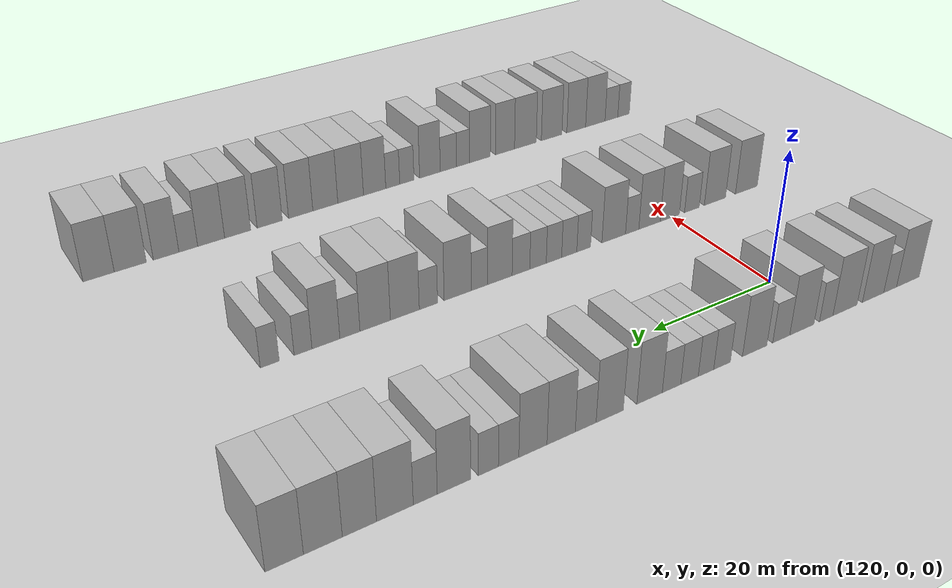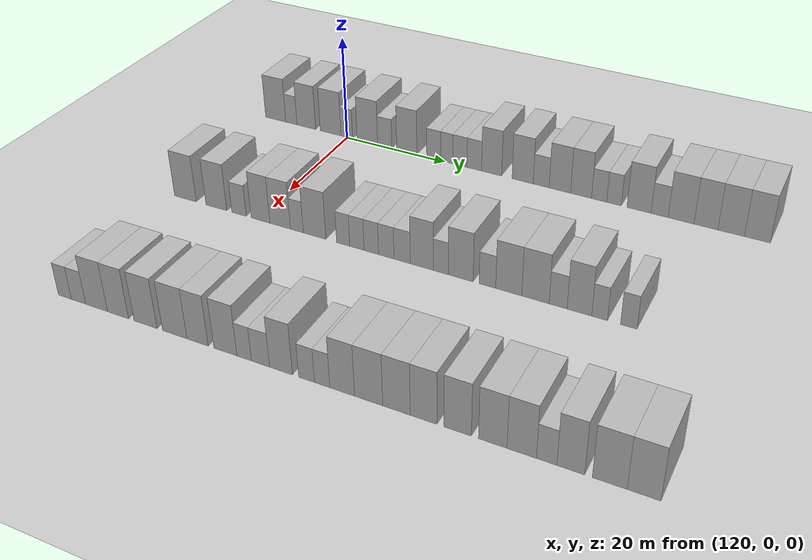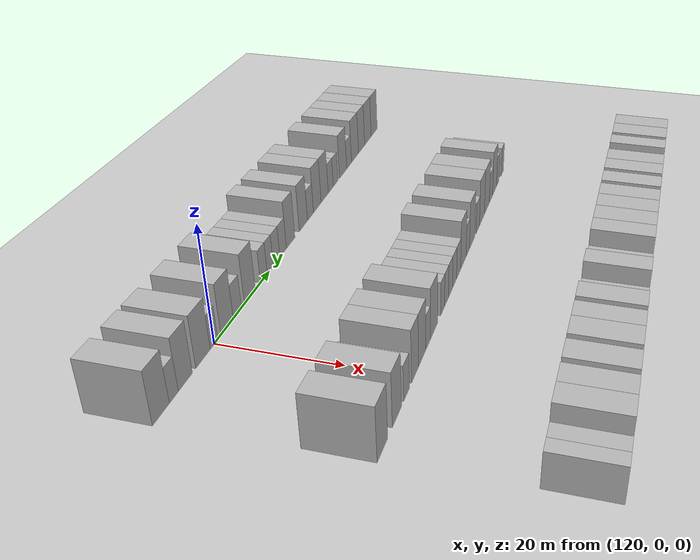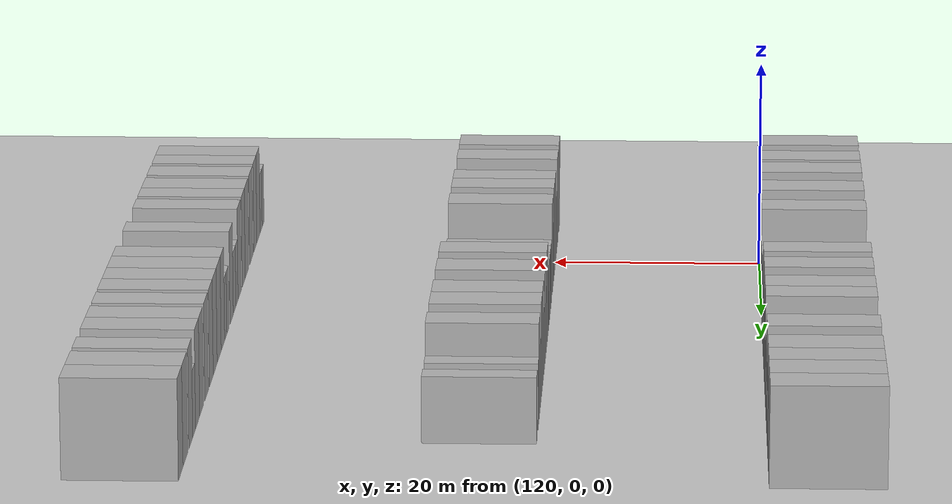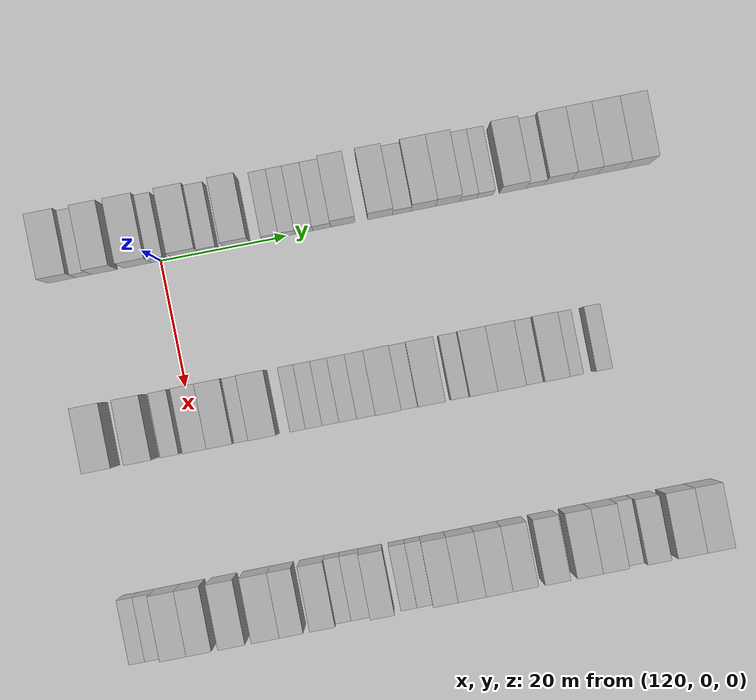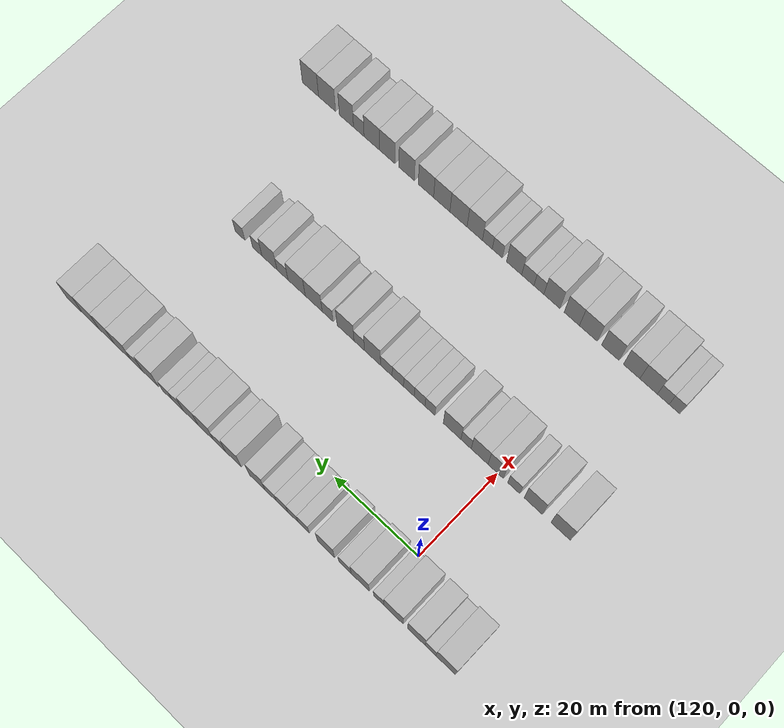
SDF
<sdf version="1.6">
 <world name="default">
  <include>
   <name>ground_plane_2</name>
   <uri>model://HANNAS_ground_plane</uri>
   <pose>100 0 0  0 0 0</pose>
  </include>
  <model name="building_790">
   <static>1</static>
   <pose>115.0000 -15.6346 0 0.000000 0.000000 0.000000</pose>
   <link name="link">
    <pose>0 0 4.50 0 0 0</pose>
    <collision name="collision"><geometry><box><size>10.0000 4.4636 9.0000</size></box></geometry></collision>
    <visual name="visual">
     <cast_shadows>0</cast_shadows>
     <geometry><box><size>10.0000 4.4636 9.0000</size></box></geometry>
     <material>
      <script>
       <uri>model://HANNAS_wall/materials/scripts</uri>
       <uri>model://HANNAS_wall/materials/textures</uri>
       <name>vrc/HANNAS_wall</name>
      </script>
     </material>
    </visual>
   </link>
  </model>
  <model name="building_791">
   <static>1</static>
   <pose>115.0000 -12.1585 0 0.000000 0.000000 0.000000</pose>
   <link name="link">
    <pose>0 0 3.00 0 0 0</pose>
    <collision name="collision"><geometry><box><size>10.0000 2.4886 6.0000</size></box></geometry></collision>
    <visual name="visual">
     <cast_shadows>0</cast_shadows>
     <geometry><box><size>10.0000 2.4886 6.0000</size></box></geometry>
     <material>
      <script>
       <uri>model://HANNAS_wall/materials/scripts</uri>
       <uri>model://HANNAS_wall/materials/textures</uri>
       <name>vrc/HANNAS_wall</name>
      </script>
     </material>
    </visual>
   </link>
  </model>
  <model name="building_792">
   <static>1</static>
   <pose>115.0000 -8.8824 0 0.000000 0.000000 0.000000</pose>
   <link name="link">
    <pose>0 0 4.50 0 0 0</pose>
    <collision name="collision"><geometry><box><size>10.0000 4.0636 9.0000</size></box></geometry></collision>
    <visual name="visual">
     <cast_shadows>0</cast_shadows>
     <geometry><box><size>10.0000 4.0636 9.0000</size></box></geometry>
     <material>
      <script>
       <uri>model://HANNAS_wall/materials/scripts</uri>
       <uri>model://HANNAS_wall/materials/textures</uri>
       <name>vrc/HANNAS_wall</name>
      </script>
     </material>
    </visual>
   </link>
  </model>
  <model name="building_793">
   <static>1</static>
   <pose>115.0000 -3.6198 0 0.000000 0.000000 0.000000</pose>
   <link name="link">
    <pose>0 0 4.50 0 0 0</pose>
    <collision name="collision"><geometry><box><size>10.0000 4.4616 9.0000</size></box></geometry></collision>
    <visual name="visual">
     <cast_shadows>0</cast_shadows>
     <geometry><box><size>10.0000 4.4616 9.0000</size></box></geometry>
     <material>
      <script>
       <uri>model://HANNAS_wall/materials/scripts</uri>
       <uri>model://HANNAS_wall/materials/textures</uri>
       <name>vrc/HANNAS_wall</name>
      </script>
     </material>
    </visual>
   </link>
  </model>
  <model name="building_794">
   <static>1</static>
   <pose>115.0000 -0.1755 0 0.000000 0.000000 0.000000</pose>
   <link name="link">
    <pose>0 0 3.00 0 0 0</pose>
    <collision name="collision"><geometry><box><size>10.0000 2.4268 6.0000</size></box></geometry></collision>
    <visual name="visual">
     <cast_shadows>0</cast_shadows>
     <geometry><box><size>10.0000 2.4268 6.0000</size></box></geometry>
     <material>
      <script>
       <uri>model://HANNAS_wall/materials/scripts</uri>
       <uri>model://HANNAS_wall/materials/textures</uri>
       <name>vrc/HANNAS_wall</name>
      </script>
     </material>
    </visual>
   </link>
  </model>
  <model name="building_795">
   <static>1</static>
   <pose>115.0000 4.1694 0 0.000000 0.000000 0.000000</pose>
   <link name="link">
    <pose>0 0 4.50 0 0 0</pose>
    <collision name="collision"><geometry><box><size>10.0000 4.2631 9.0000</size></box></geometry></collision>
    <visual name="visual">
     <cast_shadows>0</cast_shadows>
     <geometry><box><size>10.0000 4.2631 9.0000</size></box></geometry>
     <material>
      <script>
       <uri>model://HANNAS_wall/materials/scripts</uri>
       <uri>model://HANNAS_wall/materials/textures</uri>
       <name>vrc/HANNAS_wall</name>
      </script>
     </material>
    </visual>
   </link>
  </model>
  <model name="building_796">
   <static>1</static>
   <pose>115.0000 7.7758 0 0.000000 0.000000 0.000000</pose>
   <link name="link">
    <pose>0 0 3.00 0 0 0</pose>
    <collision name="collision"><geometry><box><size>10.0000 2.9496 6.0000</size></box></geometry></collision>
    <visual name="visual">
     <cast_shadows>0</cast_shadows>
     <geometry><box><size>10.0000 2.9496 6.0000</size></box></geometry>
     <material>
      <script>
       <uri>model://HANNAS_wall/materials/scripts</uri>
       <uri>model://HANNAS_wall/materials/textures</uri>
       <name>vrc/HANNAS_wall</name>
      </script>
     </material>
    </visual>
   </link>
  </model>
  <model name="building_797">
   <static>1</static>
   <pose>115.0000 12.2936 0 0.000000 0.000000 0.000000</pose>
   <link name="link">
    <pose>0 0 4.50 0 0 0</pose>
    <collision name="collision"><geometry><box><size>10.0000 4.0861 9.0000</size></box></geometry></collision>
    <visual name="visual">
     <cast_shadows>0</cast_shadows>
     <geometry><box><size>10.0000 4.0861 9.0000</size></box></geometry>
     <material>
      <script>
       <uri>model://HANNAS_wall/materials/scripts</uri>
       <uri>model://HANNAS_wall/materials/textures</uri>
       <name>vrc/HANNAS_wall</name>
      </script>
     </material>
    </visual>
   </link>
  </model>
  <model name="building_798">
   <static>1</static>
   <pose>115.0000 17.6826 0 0.000000 0.000000 0.000000</pose>
   <link name="link">
    <pose>0 0 3.00 0 0 0</pose>
    <collision name="collision"><geometry><box><size>10.0000 2.6918 6.0000</size></box></geometry></collision>
    <visual name="visual">
     <cast_shadows>0</cast_shadows>
     <geometry><box><size>10.0000 2.6918 6.0000</size></box></geometry>
     <material>
      <script>
       <uri>model://HANNAS_wall/materials/scripts</uri>
       <uri>model://HANNAS_wall/materials/textures</uri>
       <name>vrc/HANNAS_wall</name>
      </script>
     </material>
    </visual>
   </link>
  </model>
  <model name="building_799">
   <static>1</static>
   <pose>115.0000 20.2655 0 0.000000 0.000000 0.000000</pose>
   <link name="link">
    <pose>0 0 3.00 0 0 0</pose>
    <collision name="collision"><geometry><box><size>10.0000 2.4740 6.0000</size></box></geometry></collision>
    <visual name="visual">
     <cast_shadows>0</cast_shadows>
     <geometry><box><size>10.0000 2.4740 6.0000</size></box></geometry>
     <material>
      <script>
       <uri>model://HANNAS_wall/materials/scripts</uri>
       <uri>model://HANNAS_wall/materials/textures</uri>
       <name>vrc/HANNAS_wall</name>
      </script>
     </material>
    </visual>
   </link>
  </model>
  <model name="building_800">
   <static>1</static>
   <pose>115.0000 22.8845 0 0.000000 0.000000 0.000000</pose>
   <link name="link">
    <pose>0 0 3.00 0 0 0</pose>
    <collision name="collision"><geometry><box><size>10.0000 2.7640 6.0000</size></box></geometry></collision>
    <visual name="visual">
     <cast_shadows>0</cast_shadows>
     <geometry><box><size>10.0000 2.7640 6.0000</size></box></geometry>
     <material>
      <script>
       <uri>model://HANNAS_wall/materials/scripts</uri>
       <uri>model://HANNAS_wall/materials/textures</uri>
       <name>vrc/HANNAS_wall</name>
      </script>
     </material>
    </visual>
   </link>
  </model>
  <model name="building_801">
   <static>1</static>
   <pose>115.0000 25.6852 0 0.000000 0.000000 0.000000</pose>
   <link name="link">
    <pose>0 0 3.00 0 0 0</pose>
    <collision name="collision"><geometry><box><size>10.0000 2.8373 6.0000</size></box></geometry></collision>
    <visual name="visual">
     <cast_shadows>0</cast_shadows>
     <geometry><box><size>10.0000 2.8373 6.0000</size></box></geometry>
     <material>
      <script>
       <uri>model://HANNAS_wall/materials/scripts</uri>
       <uri>model://HANNAS_wall/materials/textures</uri>
       <name>vrc/HANNAS_wall</name>
      </script>
     </material>
    </visual>
   </link>
  </model>
  <model name="building_802">
   <static>1</static>
   <pose>115.0000 29.0208 0 0.000000 0.000000 0.000000</pose>
   <link name="link">
    <pose>0 0 4.50 0 0 0</pose>
    <collision name="collision"><geometry><box><size>10.0000 3.8340 9.0000</size></box></geometry></collision>
    <visual name="visual">
     <cast_shadows>0</cast_shadows>
     <geometry><box><size>10.0000 3.8340 9.0000</size></box></geometry>
     <material>
      <script>
       <uri>model://HANNAS_wall/materials/scripts</uri>
       <uri>model://HANNAS_wall/materials/textures</uri>
       <name>vrc/HANNAS_wall</name>
      </script>
     </material>
    </visual>
   </link>
  </model>
  <model name="building_803">
   <static>1</static>
   <pose>115.0000 34.9116 0 0.000000 0.000000 0.000000</pose>
   <link name="link">
    <pose>0 0 4.50 0 0 0</pose>
    <collision name="collision"><geometry><box><size>10.0000 3.9477 9.0000</size></box></geometry></collision>
    <visual name="visual">
     <cast_shadows>0</cast_shadows>
     <geometry><box><size>10.0000 3.9477 9.0000</size></box></geometry>
     <material>
      <script>
       <uri>model://HANNAS_wall/materials/scripts</uri>
       <uri>model://HANNAS_wall/materials/textures</uri>
       <name>vrc/HANNAS_wall</name>
      </script>
     </material>
    </visual>
   </link>
  </model>
  <model name="building_804">
   <static>1</static>
   <pose>115.0000 38.3651 0 0.000000 0.000000 0.000000</pose>
   <link name="link">
    <pose>0 0 3.00 0 0 0</pose>
    <collision name="collision"><geometry><box><size>10.0000 2.9592 6.0000</size></box></geometry></collision>
    <visual name="visual">
     <cast_shadows>0</cast_shadows>
     <geometry><box><size>10.0000 2.9592 6.0000</size></box></geometry>
     <material>
      <script>
       <uri>model://HANNAS_wall/materials/scripts</uri>
       <uri>model://HANNAS_wall/materials/textures</uri>
       <name>vrc/HANNAS_wall</name>
      </script>
     </material>
    </visual>
   </link>
  </model>
  <model name="building_805">
   <static>1</static>
   <pose>115.0000 41.8043 0 0.000000 0.000000 0.000000</pose>
   <link name="link">
    <pose>0 0 4.50 0 0 0</pose>
    <collision name="collision"><geometry><box><size>10.0000 3.9192 9.0000</size></box></geometry></collision>
    <visual name="visual">
     <cast_shadows>0</cast_shadows>
     <geometry><box><size>10.0000 3.9192 9.0000</size></box></geometry>
     <material>
      <script>
       <uri>model://HANNAS_wall/materials/scripts</uri>
       <uri>model://HANNAS_wall/materials/textures</uri>
       <name>vrc/HANNAS_wall</name>
      </script>
     </material>
    </visual>
   </link>
  </model>
  <model name="building_806">
   <static>1</static>
   <pose>115.0000 45.6583 0 0.000000 0.000000 0.000000</pose>
   <link name="link">
    <pose>0 0 4.50 0 0 0</pose>
    <collision name="collision"><geometry><box><size>10.0000 3.7888 9.0000</size></box></geometry></collision>
    <visual name="visual">
     <cast_shadows>0</cast_shadows>
     <geometry><box><size>10.0000 3.7888 9.0000</size></box></geometry>
     <material>
      <script>
       <uri>model://HANNAS_wall/materials/scripts</uri>
       <uri>model://HANNAS_wall/materials/textures</uri>
       <name>vrc/HANNAS_wall</name>
      </script>
     </material>
    </visual>
   </link>
  </model>
  <model name="building_807">
   <static>1</static>
   <pose>115.0000 48.9010 0 0.000000 0.000000 0.000000</pose>
   <link name="link">
    <pose>0 0 3.00 0 0 0</pose>
    <collision name="collision"><geometry><box><size>10.0000 2.6966 6.0000</size></box></geometry></collision>
    <visual name="visual">
     <cast_shadows>0</cast_shadows>
     <geometry><box><size>10.0000 2.6966 6.0000</size></box></geometry>
     <material>
      <script>
       <uri>model://HANNAS_wall/materials/scripts</uri>
       <uri>model://HANNAS_wall/materials/textures</uri>
       <name>vrc/HANNAS_wall</name>
      </script>
     </material>
    </visual>
   </link>
  </model>
  <model name="building_808">
   <static>1</static>
   <pose>115.0000 51.5421 0 0.000000 0.000000 0.000000</pose>
   <link name="link">
    <pose>0 0 3.00 0 0 0</pose>
    <collision name="collision"><geometry><box><size>10.0000 2.5856 6.0000</size></box></geometry></collision>
    <visual name="visual">
     <cast_shadows>0</cast_shadows>
     <geometry><box><size>10.0000 2.5856 6.0000</size></box></geometry>
     <material>
      <script>
       <uri>model://HANNAS_wall/materials/scripts</uri>
       <uri>model://HANNAS_wall/materials/textures</uri>
       <name>vrc/HANNAS_wall</name>
      </script>
     </material>
    </visual>
   </link>
  </model>
  <model name="building_809">
   <static>1</static>
   <pose>115.0000 55.9260 0 0.000000 0.000000 0.000000</pose>
   <link name="link">
    <pose>0 0 4.50 0 0 0</pose>
    <collision name="collision"><geometry><box><size>10.0000 4.1824 9.0000</size></box></geometry></collision>
    <visual name="visual">
     <cast_shadows>0</cast_shadows>
     <geometry><box><size>10.0000 4.1824 9.0000</size></box></geometry>
     <material>
      <script>
       <uri>model://HANNAS_wall/materials/scripts</uri>
       <uri>model://HANNAS_wall/materials/textures</uri>
       <name>vrc/HANNAS_wall</name>
      </script>
     </material>
    </visual>
   </link>
  </model>
  <model name="building_810">
   <static>1</static>
   <pose>115.0000 59.4838 0 0.000000 0.000000 0.000000</pose>
   <link name="link">
    <pose>0 0 3.00 0 0 0</pose>
    <collision name="collision"><geometry><box><size>10.0000 2.9333 6.0000</size></box></geometry></collision>
    <visual name="visual">
     <cast_shadows>0</cast_shadows>
     <geometry><box><size>10.0000 2.9333 6.0000</size></box></geometry>
     <material>
      <script>
       <uri>model://HANNAS_wall/materials/scripts</uri>
       <uri>model://HANNAS_wall/materials/textures</uri>
       <name>vrc/HANNAS_wall</name>
      </script>
     </material>
    </visual>
   </link>
  </model>
  <model name="building_811">
   <static>1</static>
   <pose>115.0000 63.1415 0 0.000000 0.000000 0.000000</pose>
   <link name="link">
    <pose>0 0 4.50 0 0 0</pose>
    <collision name="collision"><geometry><box><size>10.0000 4.3820 9.0000</size></box></geometry></collision>
    <visual name="visual">
     <cast_shadows>0</cast_shadows>
     <geometry><box><size>10.0000 4.3820 9.0000</size></box></geometry>
     <material>
      <script>
       <uri>model://HANNAS_wall/materials/scripts</uri>
       <uri>model://HANNAS_wall/materials/textures</uri>
       <name>vrc/HANNAS_wall</name>
      </script>
     </material>
    </visual>
   </link>
  </model>
  <model name="building_812">
   <static>1</static>
   <pose>115.0000 67.3079 0 0.000000 0.000000 0.000000</pose>
   <link name="link">
    <pose>0 0 4.50 0 0 0</pose>
    <collision name="collision"><geometry><box><size>10.0000 3.9509 9.0000</size></box></geometry></collision>
    <visual name="visual">
     <cast_shadows>0</cast_shadows>
     <geometry><box><size>10.0000 3.9509 9.0000</size></box></geometry>
     <material>
      <script>
       <uri>model://HANNAS_wall/materials/scripts</uri>
       <uri>model://HANNAS_wall/materials/textures</uri>
       <name>vrc/HANNAS_wall</name>
      </script>
     </material>
    </visual>
   </link>
  </model>
  <model name="building_813">
   <static>1</static>
   <pose>115.0000 71.4570 0 0.000000 0.000000 0.000000</pose>
   <link name="link">
    <pose>0 0 4.50 0 0 0</pose>
    <collision name="collision"><geometry><box><size>10.0000 4.3472 9.0000</size></box></geometry></collision>
    <visual name="visual">
     <cast_shadows>0</cast_shadows>
     <geometry><box><size>10.0000 4.3472 9.0000</size></box></geometry>
     <material>
      <script>
       <uri>model://HANNAS_wall/materials/scripts</uri>
       <uri>model://HANNAS_wall/materials/textures</uri>
       <name>vrc/HANNAS_wall</name>
      </script>
     </material>
    </visual>
   </link>
  </model>
  <model name="building_814">
   <static>1</static>
   <pose>115.0000 75.7219 0 0.000000 0.000000 0.000000</pose>
   <link name="link">
    <pose>0 0 4.50 0 0 0</pose>
    <collision name="collision"><geometry><box><size>10.0000 4.1826 9.0000</size></box></geometry></collision>
    <visual name="visual">
     <cast_shadows>0</cast_shadows>
     <geometry><box><size>10.0000 4.1826 9.0000</size></box></geometry>
     <material>
      <script>
       <uri>model://HANNAS_wall/materials/scripts</uri>
       <uri>model://HANNAS_wall/materials/textures</uri>
       <name>vrc/HANNAS_wall</name>
      </script>
     </material>
    </visual>
   </link>
  </model>
  <model name="building_1018">
   <static>1</static>
   <pose>145.0000 -14.6272 0 0.000000 0.000000 0.000000</pose>
   <link name="link">
    <pose>0 0 4.50 0 0 0</pose>
    <collision name="collision"><geometry><box><size>10.0000 4.4605 9.0000</size></box></geometry></collision>
    <visual name="visual">
     <cast_shadows>0</cast_shadows>
     <geometry><box><size>10.0000 4.4605 9.0000</size></box></geometry>
     <material>
      <script>
       <uri>model://HANNAS_wall/materials/scripts</uri>
       <uri>model://HANNAS_wall/materials/textures</uri>
       <name>vrc/HANNAS_wall</name>
      </script>
     </material>
    </visual>
   </link>
  </model>
  <model name="building_1019">
   <static>1</static>
   <pose>145.0000 -8.2925 0 0.000000 0.000000 0.000000</pose>
   <link name="link">
    <pose>0 0 4.50 0 0 0</pose>
    <collision name="collision"><geometry><box><size>10.0000 4.2090 9.0000</size></box></geometry></collision>
    <visual name="visual">
     <cast_shadows>0</cast_shadows>
     <geometry><box><size>10.0000 4.2090 9.0000</size></box></geometry>
     <material>
      <script>
       <uri>model://HANNAS_wall/materials/scripts</uri>
       <uri>model://HANNAS_wall/materials/textures</uri>
       <name>vrc/HANNAS_wall</name>
      </script>
     </material>
    </visual>
   </link>
  </model>
  <model name="building_1020">
   <static>1</static>
   <pose>145.0000 -3.7601 0 0.000000 0.000000 0.000000</pose>
   <link name="link">
    <pose>0 0 3.00 0 0 0</pose>
    <collision name="collision"><geometry><box><size>10.0000 2.8558 6.0000</size></box></geometry></collision>
    <visual name="visual">
     <cast_shadows>0</cast_shadows>
     <geometry><box><size>10.0000 2.8558 6.0000</size></box></geometry>
     <material>
      <script>
       <uri>model://HANNAS_wall/materials/scripts</uri>
       <uri>model://HANNAS_wall/materials/textures</uri>
       <name>vrc/HANNAS_wall</name>
      </script>
     </material>
    </visual>
   </link>
  </model>
  <model name="building_1021">
   <static>1</static>
   <pose>145.0000 0.4868 0 0.000000 0.000000 0.000000</pose>
   <link name="link">
    <pose>0 0 4.50 0 0 0</pose>
    <collision name="collision"><geometry><box><size>10.0000 3.6378 9.0000</size></box></geometry></collision>
    <visual name="visual">
     <cast_shadows>0</cast_shadows>
     <geometry><box><size>10.0000 3.6378 9.0000</size></box></geometry>
     <material>
      <script>
       <uri>model://HANNAS_wall/materials/scripts</uri>
       <uri>model://HANNAS_wall/materials/textures</uri>
       <name>vrc/HANNAS_wall</name>
      </script>
     </material>
    </visual>
   </link>
  </model>
  <model name="building_1022">
   <static>1</static>
   <pose>145.0000 4.2895 0 0.000000 0.000000 0.000000</pose>
   <link name="link">
    <pose>0 0 4.50 0 0 0</pose>
    <collision name="collision"><geometry><box><size>10.0000 3.9676 9.0000</size></box></geometry></collision>
    <visual name="visual">
     <cast_shadows>0</cast_shadows>
     <geometry><box><size>10.0000 3.9676 9.0000</size></box></geometry>
     <material>
      <script>
       <uri>model://HANNAS_wall/materials/scripts</uri>
       <uri>model://HANNAS_wall/materials/textures</uri>
       <name>vrc/HANNAS_wall</name>
      </script>
     </material>
    </visual>
   </link>
  </model>
  <model name="building_1023">
   <static>1</static>
   <pose>145.0000 7.4934 0 0.000000 0.000000 0.000000</pose>
   <link name="link">
    <pose>0 0 3.00 0 0 0</pose>
    <collision name="collision"><geometry><box><size>10.0000 2.4400 6.0000</size></box></geometry></collision>
    <visual name="visual">
     <cast_shadows>0</cast_shadows>
     <geometry><box><size>10.0000 2.4400 6.0000</size></box></geometry>
     <material>
      <script>
       <uri>model://HANNAS_wall/materials/scripts</uri>
       <uri>model://HANNAS_wall/materials/textures</uri>
       <name>vrc/HANNAS_wall</name>
      </script>
     </material>
    </visual>
   </link>
  </model>
  <model name="building_1024">
   <static>1</static>
   <pose>145.0000 10.8326 0 0.000000 0.000000 0.000000</pose>
   <link name="link">
    <pose>0 0 4.50 0 0 0</pose>
    <collision name="collision"><geometry><box><size>10.0000 4.2384 9.0000</size></box></geometry></collision>
    <visual name="visual">
     <cast_shadows>0</cast_shadows>
     <geometry><box><size>10.0000 4.2384 9.0000</size></box></geometry>
     <material>
      <script>
       <uri>model://HANNAS_wall/materials/scripts</uri>
       <uri>model://HANNAS_wall/materials/textures</uri>
       <name>vrc/HANNAS_wall</name>
      </script>
     </material>
    </visual>
   </link>
  </model>
  <model name="building_1025">
   <static>1</static>
   <pose>145.0000 16.1530 0 0.000000 0.000000 0.000000</pose>
   <link name="link">
    <pose>0 0 3.00 0 0 0</pose>
    <collision name="collision"><geometry><box><size>10.0000 2.4025 6.0000</size></box></geometry></collision>
    <visual name="visual">
     <cast_shadows>0</cast_shadows>
     <geometry><box><size>10.0000 2.4025 6.0000</size></box></geometry>
     <material>
      <script>
       <uri>model://HANNAS_wall/materials/scripts</uri>
       <uri>model://HANNAS_wall/materials/textures</uri>
       <name>vrc/HANNAS_wall</name>
      </script>
     </material>
    </visual>
   </link>
  </model>
  <model name="building_1026">
   <static>1</static>
   <pose>145.0000 18.6587 0 0.000000 0.000000 0.000000</pose>
   <link name="link">
    <pose>0 0 3.00 0 0 0</pose>
    <collision name="collision"><geometry><box><size>10.0000 2.6089 6.0000</size></box></geometry></collision>
    <visual name="visual">
     <cast_shadows>0</cast_shadows>
     <geometry><box><size>10.0000 2.6089 6.0000</size></box></geometry>
     <material>
      <script>
       <uri>model://HANNAS_wall/materials/scripts</uri>
       <uri>model://HANNAS_wall/materials/textures</uri>
       <name>vrc/HANNAS_wall</name>
      </script>
     </material>
    </visual>
   </link>
  </model>
  <model name="building_1027">
   <static>1</static>
   <pose>145.0000 21.2692 0 0.000000 0.000000 0.000000</pose>
   <link name="link">
    <pose>0 0 3.00 0 0 0</pose>
    <collision name="collision"><geometry><box><size>10.0000 2.6123 6.0000</size></box></geometry></collision>
    <visual name="visual">
     <cast_shadows>0</cast_shadows>
     <geometry><box><size>10.0000 2.6123 6.0000</size></box></geometry>
     <material>
      <script>
       <uri>model://HANNAS_wall/materials/scripts</uri>
       <uri>model://HANNAS_wall/materials/textures</uri>
       <name>vrc/HANNAS_wall</name>
      </script>
     </material>
    </visual>
   </link>
  </model>
  <model name="building_1028">
   <static>1</static>
   <pose>145.0000 23.9541 0 0.000000 0.000000 0.000000</pose>
   <link name="link">
    <pose>0 0 3.00 0 0 0</pose>
    <collision name="collision"><geometry><box><size>10.0000 2.7573 6.0000</size></box></geometry></collision>
    <visual name="visual">
     <cast_shadows>0</cast_shadows>
     <geometry><box><size>10.0000 2.7573 6.0000</size></box></geometry>
     <material>
      <script>
       <uri>model://HANNAS_wall/materials/scripts</uri>
       <uri>model://HANNAS_wall/materials/textures</uri>
       <name>vrc/HANNAS_wall</name>
      </script>
     </material>
    </visual>
   </link>
  </model>
  <model name="building_1029">
   <static>1</static>
   <pose>145.0000 26.7820 0 0.000000 0.000000 0.000000</pose>
   <link name="link">
    <pose>0 0 3.00 0 0 0</pose>
    <collision name="collision"><geometry><box><size>10.0000 2.8987 6.0000</size></box></geometry></collision>
    <visual name="visual">
     <cast_shadows>0</cast_shadows>
     <geometry><box><size>10.0000 2.8987 6.0000</size></box></geometry>
     <material>
      <script>
       <uri>model://HANNAS_wall/materials/scripts</uri>
       <uri>model://HANNAS_wall/materials/textures</uri>
       <name>vrc/HANNAS_wall</name>
      </script>
     </material>
    </visual>
   </link>
  </model>
  <model name="building_1030">
   <static>1</static>
   <pose>145.0000 30.2119 0 0.000000 0.000000 0.000000</pose>
   <link name="link">
    <pose>0 0 4.50 0 0 0</pose>
    <collision name="collision"><geometry><box><size>10.0000 3.9611 9.0000</size></box></geometry></collision>
    <visual name="visual">
     <cast_shadows>0</cast_shadows>
     <geometry><box><size>10.0000 3.9611 9.0000</size></box></geometry>
     <material>
      <script>
       <uri>model://HANNAS_wall/materials/scripts</uri>
       <uri>model://HANNAS_wall/materials/textures</uri>
       <name>vrc/HANNAS_wall</name>
      </script>
     </material>
    </visual>
   </link>
  </model>
  <model name="building_1031">
   <static>1</static>
   <pose>145.0000 33.4879 0 0.000000 0.000000 0.000000</pose>
   <link name="link">
    <pose>0 0 3.00 0 0 0</pose>
    <collision name="collision"><geometry><box><size>10.0000 2.5908 6.0000</size></box></geometry></collision>
    <visual name="visual">
     <cast_shadows>0</cast_shadows>
     <geometry><box><size>10.0000 2.5908 6.0000</size></box></geometry>
     <material>
      <script>
       <uri>model://HANNAS_wall/materials/scripts</uri>
       <uri>model://HANNAS_wall/materials/textures</uri>
       <name>vrc/HANNAS_wall</name>
      </script>
     </material>
    </visual>
   </link>
  </model>
  <model name="building_1032">
   <static>1</static>
   <pose>145.0000 36.8861 0 0.000000 0.000000 0.000000</pose>
   <link name="link">
    <pose>0 0 4.50 0 0 0</pose>
    <collision name="collision"><geometry><box><size>10.0000 4.2056 9.0000</size></box></geometry></collision>
    <visual name="visual">
     <cast_shadows>0</cast_shadows>
     <geometry><box><size>10.0000 4.2056 9.0000</size></box></geometry>
     <material>
      <script>
       <uri>model://HANNAS_wall/materials/scripts</uri>
       <uri>model://HANNAS_wall/materials/textures</uri>
       <name>vrc/HANNAS_wall</name>
      </script>
     </material>
    </visual>
   </link>
  </model>
  <model name="building_1033">
   <static>1</static>
   <pose>145.0000 41.3701 0 0.000000 0.000000 0.000000</pose>
   <link name="link">
    <pose>0 0 3.00 0 0 0</pose>
    <collision name="collision"><geometry><box><size>10.0000 2.7622 6.0000</size></box></geometry></collision>
    <visual name="visual">
     <cast_shadows>0</cast_shadows>
     <geometry><box><size>10.0000 2.7622 6.0000</size></box></geometry>
     <material>
      <script>
       <uri>model://HANNAS_wall/materials/scripts</uri>
       <uri>model://HANNAS_wall/materials/textures</uri>
       <name>vrc/HANNAS_wall</name>
      </script>
     </material>
    </visual>
   </link>
  </model>
  <model name="building_1034">
   <static>1</static>
   <pose>145.0000 44.8879 0 0.000000 0.000000 0.000000</pose>
   <link name="link">
    <pose>0 0 4.50 0 0 0</pose>
    <collision name="collision"><geometry><box><size>10.0000 4.2735 9.0000</size></box></geometry></collision>
    <visual name="visual">
     <cast_shadows>0</cast_shadows>
     <geometry><box><size>10.0000 4.2735 9.0000</size></box></geometry>
     <material>
      <script>
       <uri>model://HANNAS_wall/materials/scripts</uri>
       <uri>model://HANNAS_wall/materials/textures</uri>
       <name>vrc/HANNAS_wall</name>
      </script>
     </material>
    </visual>
   </link>
  </model>
  <model name="building_1035">
   <static>1</static>
   <pose>145.0000 49.2242 0 0.000000 0.000000 0.000000</pose>
   <link name="link">
    <pose>0 0 4.50 0 0 0</pose>
    <collision name="collision"><geometry><box><size>10.0000 4.3992 9.0000</size></box></geometry></collision>
    <visual name="visual">
     <cast_shadows>0</cast_shadows>
     <geometry><box><size>10.0000 4.3992 9.0000</size></box></geometry>
     <material>
      <script>
       <uri>model://HANNAS_wall/materials/scripts</uri>
       <uri>model://HANNAS_wall/materials/textures</uri>
       <name>vrc/HANNAS_wall</name>
      </script>
     </material>
    </visual>
   </link>
  </model>
  <model name="building_1036">
   <static>1</static>
   <pose>145.0000 52.8450 0 0.000000 0.000000 0.000000</pose>
   <link name="link">
    <pose>0 0 3.00 0 0 0</pose>
    <collision name="collision"><geometry><box><size>10.0000 2.8424 6.0000</size></box></geometry></collision>
    <visual name="visual">
     <cast_shadows>0</cast_shadows>
     <geometry><box><size>10.0000 2.8424 6.0000</size></box></geometry>
     <material>
      <script>
       <uri>model://HANNAS_wall/materials/scripts</uri>
       <uri>model://HANNAS_wall/materials/textures</uri>
       <name>vrc/HANNAS_wall</name>
      </script>
     </material>
    </visual>
   </link>
  </model>
  <model name="building_1037">
   <static>1</static>
   <pose>145.0000 56.1950 0 0.000000 0.000000 0.000000</pose>
   <link name="link">
    <pose>0 0 4.50 0 0 0</pose>
    <collision name="collision"><geometry><box><size>10.0000 3.8576 9.0000</size></box></geometry></collision>
    <visual name="visual">
     <cast_shadows>0</cast_shadows>
     <geometry><box><size>10.0000 3.8576 9.0000</size></box></geometry>
     <material>
      <script>
       <uri>model://HANNAS_wall/materials/scripts</uri>
       <uri>model://HANNAS_wall/materials/textures</uri>
       <name>vrc/HANNAS_wall</name>
      </script>
     </material>
    </visual>
   </link>
  </model>
  <model name="building_1038">
   <static>1</static>
   <pose>145.0000 59.3346 0 0.000000 0.000000 0.000000</pose>
   <link name="link">
    <pose>0 0 3.00 0 0 0</pose>
    <collision name="collision"><geometry><box><size>10.0000 2.4215 6.0000</size></box></geometry></collision>
    <visual name="visual">
     <cast_shadows>0</cast_shadows>
     <geometry><box><size>10.0000 2.4215 6.0000</size></box></geometry>
     <material>
      <script>
       <uri>model://HANNAS_wall/materials/scripts</uri>
       <uri>model://HANNAS_wall/materials/textures</uri>
       <name>vrc/HANNAS_wall</name>
      </script>
     </material>
    </visual>
   </link>
  </model>
  <model name="building_1039">
   <static>1</static>
   <pose>145.0000 63.7946 0 0.000000 0.000000 0.000000</pose>
   <link name="link">
    <pose>0 0 3.00 0 0 0</pose>
    <collision name="collision"><geometry><box><size>10.0000 2.4986 6.0000</size></box></geometry></collision>
    <visual name="visual">
     <cast_shadows>0</cast_shadows>
     <geometry><box><size>10.0000 2.4986 6.0000</size></box></geometry>
     <material>
      <script>
       <uri>model://HANNAS_wall/materials/scripts</uri>
       <uri>model://HANNAS_wall/materials/textures</uri>
       <name>vrc/HANNAS_wall</name>
      </script>
     </material>
    </visual>
   </link>
  </model>
  <model name="building_1242">
   <static>1</static>
   <pose>175.0000 -14.7712 0 0.000000 0.000000 0.000000</pose>
   <link name="link">
    <pose>0 0 3.00 0 0 0</pose>
    <collision name="collision"><geometry><box><size>10.0000 2.4799 6.0000</size></box></geometry></collision>
    <visual name="visual">
     <cast_shadows>0</cast_shadows>
     <geometry><box><size>10.0000 2.4799 6.0000</size></box></geometry>
     <material>
      <script>
       <uri>model://HANNAS_wall/materials/scripts</uri>
       <uri>model://HANNAS_wall/materials/textures</uri>
       <name>vrc/HANNAS_wall</name>
      </script>
     </material>
    </visual>
   </link>
  </model>
  <model name="building_1243">
   <static>1</static>
   <pose>175.0000 -12.1721 0 0.000000 0.000000 0.000000</pose>
   <link name="link">
    <pose>0 0 3.00 0 0 0</pose>
    <collision name="collision"><geometry><box><size>10.0000 2.7182 6.0000</size></box></geometry></collision>
    <visual name="visual">
     <cast_shadows>0</cast_shadows>
     <geometry><box><size>10.0000 2.7182 6.0000</size></box></geometry>
     <material>
      <script>
       <uri>model://HANNAS_wall/materials/scripts</uri>
       <uri>model://HANNAS_wall/materials/textures</uri>
       <name>vrc/HANNAS_wall</name>
      </script>
     </material>
    </visual>
   </link>
  </model>
  <model name="building_1244">
   <static>1</static>
   <pose>175.0000 -8.7775 0 0.000000 0.000000 0.000000</pose>
   <link name="link">
    <pose>0 0 4.50 0 0 0</pose>
    <collision name="collision"><geometry><box><size>10.0000 4.0709 9.0000</size></box></geometry></collision>
    <visual name="visual">
     <cast_shadows>0</cast_shadows>
     <geometry><box><size>10.0000 4.0709 9.0000</size></box></geometry>
     <material>
      <script>
       <uri>model://HANNAS_wall/materials/scripts</uri>
       <uri>model://HANNAS_wall/materials/textures</uri>
       <name>vrc/HANNAS_wall</name>
      </script>
     </material>
    </visual>
   </link>
  </model>
  <model name="building_1245">
   <static>1</static>
   <pose>175.0000 -4.8108 0 0.000000 0.000000 0.000000</pose>
   <link name="link">
    <pose>0 0 4.50 0 0 0</pose>
    <collision name="collision"><geometry><box><size>10.0000 3.8626 9.0000</size></box></geometry></collision>
    <visual name="visual">
     <cast_shadows>0</cast_shadows>
     <geometry><box><size>10.0000 3.8626 9.0000</size></box></geometry>
     <material>
      <script>
       <uri>model://HANNAS_wall/materials/scripts</uri>
       <uri>model://HANNAS_wall/materials/textures</uri>
       <name>vrc/HANNAS_wall</name>
      </script>
     </material>
    </visual>
   </link>
  </model>
  <model name="building_1246">
   <static>1</static>
   <pose>175.0000 0.1934 0 0.000000 0.000000 0.000000</pose>
   <link name="link">
    <pose>0 0 4.50 0 0 0</pose>
    <collision name="collision"><geometry><box><size>10.0000 4.1459 9.0000</size></box></geometry></collision>
    <visual name="visual">
     <cast_shadows>0</cast_shadows>
     <geometry><box><size>10.0000 4.1459 9.0000</size></box></geometry>
     <material>
      <script>
       <uri>model://HANNAS_wall/materials/scripts</uri>
       <uri>model://HANNAS_wall/materials/textures</uri>
       <name>vrc/HANNAS_wall</name>
      </script>
     </material>
    </visual>
   </link>
  </model>
  <model name="building_1247">
   <static>1</static>
   <pose>175.0000 5.4056 0 0.000000 0.000000 0.000000</pose>
   <link name="link">
    <pose>0 0 4.50 0 0 0</pose>
    <collision name="collision"><geometry><box><size>10.0000 4.2783 9.0000</size></box></geometry></collision>
    <visual name="visual">
     <cast_shadows>0</cast_shadows>
     <geometry><box><size>10.0000 4.2783 9.0000</size></box></geometry>
     <material>
      <script>
       <uri>model://HANNAS_wall/materials/scripts</uri>
       <uri>model://HANNAS_wall/materials/textures</uri>
       <name>vrc/HANNAS_wall</name>
      </script>
     </material>
    </visual>
   </link>
  </model>
  <model name="building_1248">
   <static>1</static>
   <pose>175.0000 9.3741 0 0.000000 0.000000 0.000000</pose>
   <link name="link">
    <pose>0 0 4.50 0 0 0</pose>
    <collision name="collision"><geometry><box><size>10.0000 3.6589 9.0000</size></box></geometry></collision>
    <visual name="visual">
     <cast_shadows>0</cast_shadows>
     <geometry><box><size>10.0000 3.6589 9.0000</size></box></geometry>
     <material>
      <script>
       <uri>model://HANNAS_wall/materials/scripts</uri>
       <uri>model://HANNAS_wall/materials/textures</uri>
       <name>vrc/HANNAS_wall</name>
      </script>
     </material>
    </visual>
   </link>
  </model>
  <model name="building_1249">
   <static>1</static>
   <pose>175.0000 14.1501 0 0.000000 0.000000 0.000000</pose>
   <link name="link">
    <pose>0 0 4.50 0 0 0</pose>
    <collision name="collision"><geometry><box><size>10.0000 3.8931 9.0000</size></box></geometry></collision>
    <visual name="visual">
     <cast_shadows>0</cast_shadows>
     <geometry><box><size>10.0000 3.8931 9.0000</size></box></geometry>
     <material>
      <script>
       <uri>model://HANNAS_wall/materials/scripts</uri>
       <uri>model://HANNAS_wall/materials/textures</uri>
       <name>vrc/HANNAS_wall</name>
      </script>
     </material>
    </visual>
   </link>
  </model>
  <model name="building_1250">
   <static>1</static>
   <pose>175.0000 17.3033 0 0.000000 0.000000 0.000000</pose>
   <link name="link">
    <pose>0 0 3.00 0 0 0</pose>
    <collision name="collision"><geometry><box><size>10.0000 2.4133 6.0000</size></box></geometry></collision>
    <visual name="visual">
     <cast_shadows>0</cast_shadows>
     <geometry><box><size>10.0000 2.4133 6.0000</size></box></geometry>
     <material>
      <script>
       <uri>model://HANNAS_wall/materials/scripts</uri>
       <uri>model://HANNAS_wall/materials/textures</uri>
       <name>vrc/HANNAS_wall</name>
      </script>
     </material>
    </visual>
   </link>
  </model>
  <model name="building_1251">
   <static>1</static>
   <pose>175.0000 20.0085 0 0.000000 0.000000 0.000000</pose>
   <link name="link">
    <pose>0 0 3.00 0 0 0</pose>
    <collision name="collision"><geometry><box><size>10.0000 2.9970 6.0000</size></box></geometry></collision>
    <visual name="visual">
     <cast_shadows>0</cast_shadows>
     <geometry><box><size>10.0000 2.9970 6.0000</size></box></geometry>
     <material>
      <script>
       <uri>model://HANNAS_wall/materials/scripts</uri>
       <uri>model://HANNAS_wall/materials/textures</uri>
       <name>vrc/HANNAS_wall</name>
      </script>
     </material>
    </visual>
   </link>
  </model>
  <model name="building_1252">
   <static>1</static>
   <pose>175.0000 23.3667 0 0.000000 0.000000 0.000000</pose>
   <link name="link">
    <pose>0 0 4.50 0 0 0</pose>
    <collision name="collision"><geometry><box><size>10.0000 3.7194 9.0000</size></box></geometry></collision>
    <visual name="visual">
     <cast_shadows>0</cast_shadows>
     <geometry><box><size>10.0000 3.7194 9.0000</size></box></geometry>
     <material>
      <script>
       <uri>model://HANNAS_wall/materials/scripts</uri>
       <uri>model://HANNAS_wall/materials/textures</uri>
       <name>vrc/HANNAS_wall</name>
      </script>
     </material>
    </visual>
   </link>
  </model>
  <model name="building_1253">
   <static>1</static>
   <pose>175.0000 27.4813 0 0.000000 0.000000 0.000000</pose>
   <link name="link">
    <pose>0 0 3.00 0 0 0</pose>
    <collision name="collision"><geometry><box><size>10.0000 2.5098 6.0000</size></box></geometry></collision>
    <visual name="visual">
     <cast_shadows>0</cast_shadows>
     <geometry><box><size>10.0000 2.5098 6.0000</size></box></geometry>
     <material>
      <script>
       <uri>model://HANNAS_wall/materials/scripts</uri>
       <uri>model://HANNAS_wall/materials/textures</uri>
       <name>vrc/HANNAS_wall</name>
      </script>
     </material>
    </visual>
   </link>
  </model>
  <model name="building_1254">
   <static>1</static>
   <pose>175.0000 29.9529 0 0.000000 0.000000 0.000000</pose>
   <link name="link">
    <pose>0 0 3.00 0 0 0</pose>
    <collision name="collision"><geometry><box><size>10.0000 2.4332 6.0000</size></box></geometry></collision>
    <visual name="visual">
     <cast_shadows>0</cast_shadows>
     <geometry><box><size>10.0000 2.4332 6.0000</size></box></geometry>
     <material>
      <script>
       <uri>model://HANNAS_wall/materials/scripts</uri>
       <uri>model://HANNAS_wall/materials/textures</uri>
       <name>vrc/HANNAS_wall</name>
      </script>
     </material>
    </visual>
   </link>
  </model>
  <model name="building_1255">
   <static>1</static>
   <pose>175.0000 33.0856 0 0.000000 0.000000 0.000000</pose>
   <link name="link">
    <pose>0 0 4.50 0 0 0</pose>
    <collision name="collision"><geometry><box><size>10.0000 3.8323 9.0000</size></box></geometry></collision>
    <visual name="visual">
     <cast_shadows>0</cast_shadows>
     <geometry><box><size>10.0000 3.8323 9.0000</size></box></geometry>
     <material>
      <script>
       <uri>model://HANNAS_wall/materials/scripts</uri>
       <uri>model://HANNAS_wall/materials/textures</uri>
       <name>vrc/HANNAS_wall</name>
      </script>
     </material>
    </visual>
   </link>
  </model>
  <model name="building_1256">
   <static>1</static>
   <pose>175.0000 37.1548 0 0.000000 0.000000 0.000000</pose>
   <link name="link">
    <pose>0 0 4.50 0 0 0</pose>
    <collision name="collision"><geometry><box><size>10.0000 4.3060 9.0000</size></box></geometry></collision>
    <visual name="visual">
     <cast_shadows>0</cast_shadows>
     <geometry><box><size>10.0000 4.3060 9.0000</size></box></geometry>
     <material>
      <script>
       <uri>model://HANNAS_wall/materials/scripts</uri>
       <uri>model://HANNAS_wall/materials/textures</uri>
       <name>vrc/HANNAS_wall</name>
      </script>
     </material>
    </visual>
   </link>
  </model>
  <model name="building_1257">
   <static>1</static>
   <pose>175.0000 41.3630 0 0.000000 0.000000 0.000000</pose>
   <link name="link">
    <pose>0 0 4.50 0 0 0</pose>
    <collision name="collision"><geometry><box><size>10.0000 4.1104 9.0000</size></box></geometry></collision>
    <visual name="visual">
     <cast_shadows>0</cast_shadows>
     <geometry><box><size>10.0000 4.1104 9.0000</size></box></geometry>
     <material>
      <script>
       <uri>model://HANNAS_wall/materials/scripts</uri>
       <uri>model://HANNAS_wall/materials/textures</uri>
       <name>vrc/HANNAS_wall</name>
      </script>
     </material>
    </visual>
   </link>
  </model>
  <model name="building_1258">
   <static>1</static>
   <pose>175.0000 45.3714 0 0.000000 0.000000 0.000000</pose>
   <link name="link">
    <pose>0 0 4.50 0 0 0</pose>
    <collision name="collision"><geometry><box><size>10.0000 3.9064 9.0000</size></box></geometry></collision>
    <visual name="visual">
     <cast_shadows>0</cast_shadows>
     <geometry><box><size>10.0000 3.9064 9.0000</size></box></geometry>
     <material>
      <script>
       <uri>model://HANNAS_wall/materials/scripts</uri>
       <uri>model://HANNAS_wall/materials/textures</uri>
       <name>vrc/HANNAS_wall</name>
      </script>
     </material>
    </visual>
   </link>
  </model>
  <model name="building_1259">
   <static>1</static>
   <pose>175.0000 50.2957 0 0.000000 0.000000 0.000000</pose>
   <link name="link">
    <pose>0 0 4.50 0 0 0</pose>
    <collision name="collision"><geometry><box><size>10.0000 3.9423 9.0000</size></box></geometry></collision>
    <visual name="visual">
     <cast_shadows>0</cast_shadows>
     <geometry><box><size>10.0000 3.9423 9.0000</size></box></geometry>
     <material>
      <script>
       <uri>model://HANNAS_wall/materials/scripts</uri>
       <uri>model://HANNAS_wall/materials/textures</uri>
       <name>vrc/HANNAS_wall</name>
      </script>
     </material>
    </visual>
   </link>
  </model>
  <model name="building_1260">
   <static>1</static>
   <pose>175.0000 55.2581 0 0.000000 0.000000 0.000000</pose>
   <link name="link">
    <pose>0 0 4.50 0 0 0</pose>
    <collision name="collision"><geometry><box><size>10.0000 3.9825 9.0000</size></box></geometry></collision>
    <visual name="visual">
     <cast_shadows>0</cast_shadows>
     <geometry><box><size>10.0000 3.9825 9.0000</size></box></geometry>
     <material>
      <script>
       <uri>model://HANNAS_wall/materials/scripts</uri>
       <uri>model://HANNAS_wall/materials/textures</uri>
       <name>vrc/HANNAS_wall</name>
      </script>
     </material>
    </visual>
   </link>
  </model>
  <model name="building_1261">
   <static>1</static>
   <pose>175.0000 59.2673 0 0.000000 0.000000 0.000000</pose>
   <link name="link">
    <pose>0 0 4.50 0 0 0</pose>
    <collision name="collision"><geometry><box><size>10.0000 4.0360 9.0000</size></box></geometry></collision>
    <visual name="visual">
     <cast_shadows>0</cast_shadows>
     <geometry><box><size>10.0000 4.0360 9.0000</size></box></geometry>
     <material>
      <script>
       <uri>model://HANNAS_wall/materials/scripts</uri>
       <uri>model://HANNAS_wall/materials/textures</uri>
       <name>vrc/HANNAS_wall</name>
      </script>
     </material>
    </visual>
   </link>
  </model>
  <model name="building_1262">
   <static>1</static>
   <pose>175.0000 62.6612 0 0.000000 0.000000 0.000000</pose>
   <link name="link">
    <pose>0 0 3.00 0 0 0</pose>
    <collision name="collision"><geometry><box><size>10.0000 2.7518 6.0000</size></box></geometry></collision>
    <visual name="visual">
     <cast_shadows>0</cast_shadows>
     <geometry><box><size>10.0000 2.7518 6.0000</size></box></geometry>
     <material>
      <script>
       <uri>model://HANNAS_wall/materials/scripts</uri>
       <uri>model://HANNAS_wall/materials/textures</uri>
       <name>vrc/HANNAS_wall</name>
      </script>
     </material>
    </visual>
   </link>
  </model>
  <model name="building_1263">
   <static>1</static>
   <pose>175.0000 65.8839 0 0.000000 0.000000 0.000000</pose>
   <link name="link">
    <pose>0 0 4.50 0 0 0</pose>
    <collision name="collision"><geometry><box><size>10.0000 3.6937 9.0000</size></box></geometry></collision>
    <visual name="visual">
     <cast_shadows>0</cast_shadows>
     <geometry><box><size>10.0000 3.6937 9.0000</size></box></geometry>
     <material>
      <script>
       <uri>model://HANNAS_wall/materials/scripts</uri>
       <uri>model://HANNAS_wall/materials/textures</uri>
       <name>vrc/HANNAS_wall</name>
      </script>
     </material>
    </visual>
   </link>
  </model>
  <model name="building_1264">
   <static>1</static>
   <pose>175.0000 70.9792 0 0.000000 0.000000 0.000000</pose>
   <link name="link">
    <pose>0 0 4.50 0 0 0</pose>
    <collision name="collision"><geometry><box><size>10.0000 4.4968 9.0000</size></box></geometry></collision>
    <visual name="visual">
     <cast_shadows>0</cast_shadows>
     <geometry><box><size>10.0000 4.4968 9.0000</size></box></geometry>
     <material>
      <script>
       <uri>model://HANNAS_wall/materials/scripts</uri>
       <uri>model://HANNAS_wall/materials/textures</uri>
       <name>vrc/HANNAS_wall</name>
      </script>
     </material>
    </visual>
   </link>
  </model>
  <model name="building_1265">
   <static>1</static>
   <pose>175.0000 75.3725 0 0.000000 0.000000 0.000000</pose>
   <link name="link">
    <pose>0 0 4.50 0 0 0</pose>
    <collision name="collision"><geometry><box><size>10.0000 4.2898 9.0000</size></box></geometry></collision>
    <visual name="visual">
     <cast_shadows>0</cast_shadows>
     <geometry><box><size>10.0000 4.2898 9.0000</size></box></geometry>
     <material>
      <script>
       <uri>model://HANNAS_wall/materials/scripts</uri>
       <uri>model://HANNAS_wall/materials/textures</uri>
       <name>vrc/HANNAS_wall</name>
      </script>
     </material>
    </visual>
   </link>
  </model>
 </world>
</sdf>
